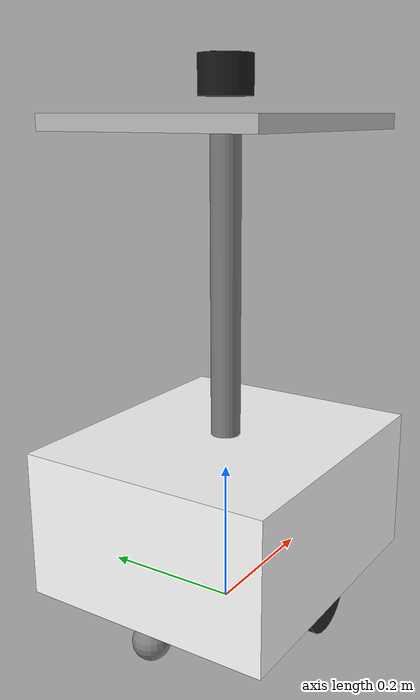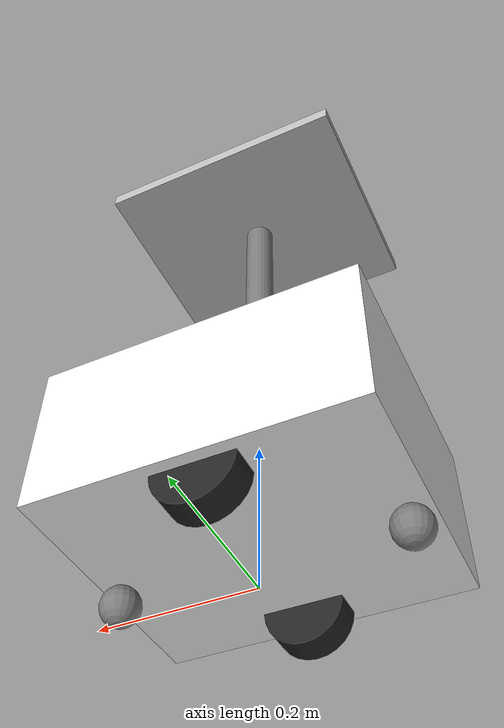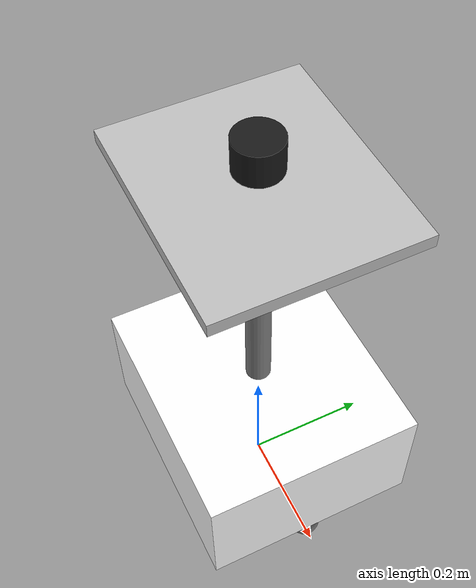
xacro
<?xml version="1.0"?>
<robot name="butler_robot" xmlns:xacro="http://www.ros.org/wiki/xacro">

  <xacro:include filename="$(find butler_robot)/urdf/materials.xacro"/>

  <xacro:property name="base_width"       value="0.35"/>
  <xacro:property name="base_length"      value="0.40"/>
  <xacro:property name="base_height"      value="0.20"/>
  <xacro:property name="base_mass"        value="5.0"/>
  <xacro:property name="wheel_radius"     value="0.05"/>
  <xacro:property name="wheel_width"      value="0.04"/>
  <xacro:property name="wheel_mass"       value="0.5"/>
  <xacro:property name="wheel_separation" value="0.28"/>
  <xacro:property name="caster_radius"    value="0.025"/>
  <xacro:property name="caster_mass"      value="0.1"/>
  <xacro:property name="tray_width"       value="0.30"/>
  <xacro:property name="tray_length"      value="0.35"/>
  <xacro:property name="tray_height"      value="0.02"/>
  <xacro:property name="tray_mass"        value="0.3"/>
  <xacro:property name="tray_pole_height" value="0.40"/>
  <xacro:property name="lidar_radius"     value="0.035"/>
  <xacro:property name="lidar_height"     value="0.05"/>
  <xacro:property name="lidar_mass"       value="0.1"/>

  <!-- Inertia macros -->
  <xacro:macro name="box_inertia" params="mass x y z">
    <inertial>
      <mass value="${mass}"/>
      <inertia ixx="${(1/12)*mass*(y*y+z*z)}" ixy="0" ixz="0"
               iyy="${(1/12)*mass*(x*x+z*z)}" iyz="0"
               izz="${(1/12)*mass*(x*x+y*y)}"/>
    </inertial>
  </xacro:macro>

  <xacro:macro name="cylinder_inertia" params="mass r h">
    <inertial>
      <mass value="${mass}"/>
      <inertia ixx="${(1/12)*mass*(3*r*r+h*h)}" ixy="0" ixz="0"
               iyy="${(1/12)*mass*(3*r*r+h*h)}" iyz="0"
               izz="${(1/2)*mass*r*r}"/>
    </inertial>
  </xacro:macro>

  <xacro:macro name="sphere_inertia" params="mass r">
    <inertial>
      <mass value="${mass}"/>
      <inertia ixx="${(2/5)*mass*r*r}" ixy="0" ixz="0"
               iyy="${(2/5)*mass*r*r}" iyz="0"
               izz="${(2/5)*mass*r*r}"/>
    </inertial>
  </xacro:macro>

  <!-- Wheel macro -->
  <xacro:macro name="wheel" params="name x_pos y_pos">
    <link name="${name}_wheel">
      <visual>
        <geometry><cylinder radius="${wheel_radius}" length="${wheel_width}"/></geometry>
        <material name="rubber_black"/>
      </visual>
      <collision>
        <geometry><cylinder radius="${wheel_radius}" length="${wheel_width}"/></geometry>
      </collision>
      <xacro:cylinder_inertia mass="${wheel_mass}" r="${wheel_radius}" h="${wheel_width}"/>
    </link>
    <joint name="${name}_wheel_joint" type="continuous">
      <parent link="base_link"/>
      <child  link="${name}_wheel"/>
      <origin xyz="${x_pos} ${y_pos} ${-base_height/2}" rpy="${pi/2} 0 0"/>
      <axis xyz="0 0 1"/>
      <dynamics damping="0.1" friction="0.1"/>
    </joint>
    <gazebo reference="${name}_wheel">
      <material>Gazebo/Black</material>
      <mu1>1.0</mu1><mu2>1.0</mu2>
      <kp>500000</kp><kd>10</kd>
    </gazebo>
  </xacro:macro>

  <!-- Caster macro -->
  <xacro:macro name="caster" params="name x_pos y_pos">
    <link name="${name}_caster">
      <visual>
        <geometry><sphere radius="${caster_radius}"/></geometry>
        <material name="grey"/>
      </visual>
      <collision>
        <geometry><sphere radius="${caster_radius}"/></geometry>
      </collision>
      <xacro:sphere_inertia mass="${caster_mass}" r="${caster_radius}"/>
    </link>
    <joint name="${name}_caster_joint" type="fixed">
      <parent link="base_link"/>
      <child  link="${name}_caster"/>
      <origin xyz="${x_pos} ${y_pos} ${-base_height/2 - wheel_radius + caster_radius}" rpy="0 0 0"/>
    </joint>
    <gazebo reference="${name}_caster">
      <material>Gazebo/Grey</material>
      <mu1>0.0</mu1><mu2>0.0</mu2>
    </gazebo>
  </xacro:macro>

  <!-- Base footprint -->
  <link name="base_footprint"/>
  <joint name="base_footprint_joint" type="fixed">
    <parent link="base_footprint"/>
    <child  link="base_link"/>
    <origin xyz="0 0 ${wheel_radius + base_height/2}" rpy="0 0 0"/>
  </joint>

  <!-- Base link -->
  <link name="base_link">
    <visual>
      <geometry><box size="${base_length} ${base_width} ${base_height}"/></geometry>
      <material name="white"/>
    </visual>
    <collision>
      <geometry><box size="${base_length} ${base_width} ${base_height}"/></geometry>
    </collision>
    <xacro:box_inertia mass="${base_mass}" x="${base_length}" y="${base_width}" z="${base_height}"/>
  </link>
  <gazebo reference="base_link"><material>Gazebo/White</material></gazebo>

  <!-- Wheels -->
  <xacro:wheel name="left"  x_pos="0.0" y_pos="${ wheel_separation/2}"/>
  <xacro:wheel name="right" x_pos="0.0" y_pos="${-wheel_separation/2}"/>

  <!-- Casters -->
  <xacro:caster name="front" x_pos="${ base_length/2 - caster_radius}" y_pos="0.0"/>
  <xacro:caster name="rear"  x_pos="${-base_length/2 + caster_radius}" y_pos="0.0"/>

  <!-- Tray pole -->
  <link name="tray_pole">
    <visual>
      <geometry><cylinder radius="0.02" length="${tray_pole_height}"/></geometry>
      <material name="grey"/>
    </visual>
    <collision>
      <geometry><cylinder radius="0.02" length="${tray_pole_height}"/></geometry>
    </collision>
    <xacro:cylinder_inertia mass="0.2" r="0.02" h="${tray_pole_height}"/>
  </link>
  <joint name="tray_pole_joint" type="fixed">
    <parent link="base_link"/>
    <child  link="tray_pole"/>
    <origin xyz="0 0 ${base_height/2 + tray_pole_height/2}" rpy="0 0 0"/>
  </joint>
  <gazebo reference="tray_pole"><material>Gazebo/Grey</material></gazebo>

  <!-- Tray -->
  <link name="tray">
    <visual>
      <geometry><box size="${tray_length} ${tray_width} ${tray_height}"/></geometry>
      <material name="silver"/>
    </visual>
    <collision>
      <geometry><box size="${tray_length} ${tray_width} ${tray_height}"/></geometry>
    </collision>
    <xacro:box_inertia mass="${tray_mass}" x="${tray_length}" y="${tray_width}" z="${tray_height}"/>
  </link>
  <joint name="tray_joint" type="fixed">
    <parent link="tray_pole"/>
    <child  link="tray"/>
    <origin xyz="0 0 ${tray_pole_height/2 + tray_height/2}" rpy="0 0 0"/>
  </joint>
  <gazebo reference="tray"><material>Gazebo/Grey</material></gazebo>

  <!-- Lidar -->
  <link name="lidar_link">
    <visual>
      <geometry><cylinder radius="${lidar_radius}" length="${lidar_height}"/></geometry>
      <material name="black"/>
    </visual>
    <collision>
      <geometry><cylinder radius="${lidar_radius}" length="${lidar_height}"/></geometry>
    </collision>
    <xacro:cylinder_inertia mass="${lidar_mass}" r="${lidar_radius}" h="${lidar_height}"/>
  </link>
  <joint name="lidar_joint" type="fixed">
    <parent link="base_link"/>
    <child  link="lidar_link"/>
    <origin xyz="0 0 ${base_height/2 + tray_pole_height + tray_height + lidar_height/2 + 0.02}" rpy="0 0 0"/>
  </joint>
  <gazebo reference="lidar_link">
    <material>Gazebo/Black</material>
    <sensor type="ray" name="lidar_sensor">
      <pose>0 0 0 0 0 0</pose>
      <visualize>true</visualize>
      <update_rate>10</update_rate>
      <ray>
        <scan>
          <horizontal>
            <samples>360</samples>
            <resolution>1</resolution>
            <min_angle>-3.14159</min_angle>
            <max_angle> 3.14159</max_angle>
          </horizontal>
        </scan>
        <range><min>0.12</min><max>10.0</max><resolution>0.01</resolution></range>
        <noise><type>gaussian</type><mean>0.0</mean><stddev>0.01</stddev></noise>
      </ray>
      <plugin name="lidar_plugin" filename="libgazebo_ros_ray_sensor.so">
        <ros>
          <namespace>/</namespace>
          <remapping>~/out:=/scan</remapping>
        </ros>
        <output_type>sensor_msgs/LaserScan</output_type>
        <frame_name>lidar_link</frame_name>
      </plugin>
    </sensor>
  </gazebo>

  <!-- Differential drive plugin - ROS2 Humble compatible -->
  <gazebo>
    <plugin name="diff_drive" filename="libgazebo_ros_diff_drive.so">
      <ros>
        <remapping>cmd_vel:=/cmd_vel</remapping>
        <remapping>odom:=/odom</remapping>
      </ros>
      <left_joint>left_wheel_joint</left_joint>
      <right_joint>right_wheel_joint</right_joint>
      <wheel_separation>${wheel_separation}</wheel_separation>
      <wheel_diameter>${2 * wheel_radius}</wheel_diameter>
      <max_wheel_torque>20</max_wheel_torque>
      <max_wheel_acceleration>1.0</max_wheel_acceleration>
      <publish_odom>true</publish_odom>
      <publish_odom_tf>true</publish_odom_tf>
      <publish_wheel_tf>true</publish_wheel_tf>
      <odometry_frame>odom</odometry_frame>
      <robot_base_frame>base_footprint</robot_base_frame>
    </plugin>
  </gazebo>

</robot>

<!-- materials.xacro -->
<robot xmlns:xacro="http://www.ros.org/wiki/xacro">
  <material name="white">      <color rgba="1.00 1.00 1.00 1.0"/></material>
  <material name="black">      <color rgba="0.10 0.10 0.10 1.0"/></material>
  <material name="grey">       <color rgba="0.50 0.50 0.50 1.0"/></material>
  <material name="dark_grey">  <color rgba="0.30 0.30 0.30 1.0"/></material>
  <material name="silver">     <color rgba="0.75 0.75 0.75 1.0"/></material>
  <material name="blue">       <color rgba="0.20 0.40 0.80 1.0"/></material>
  <material name="green">      <color rgba="0.00 0.80 0.00 1.0"/></material>
  <material name="red">        <color rgba="0.80 0.00 0.00 1.0"/></material>
  <material name="yellow">     <color rgba="1.00 0.85 0.00 1.0"/></material>
  <material name="orange">     <color rgba="1.00 0.50 0.00 1.0"/></material>
  <material name="rubber_black"><color rgba="0.15 0.15 0.15 1.0"/></material>
</robot>
